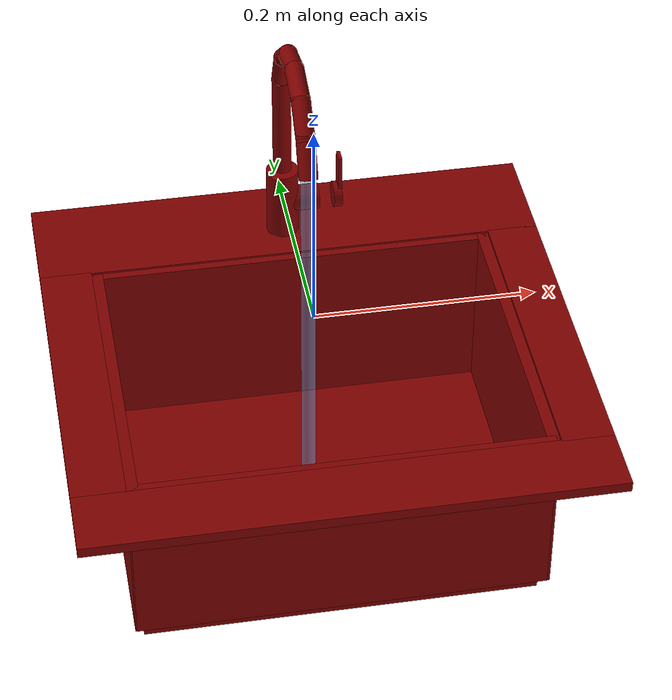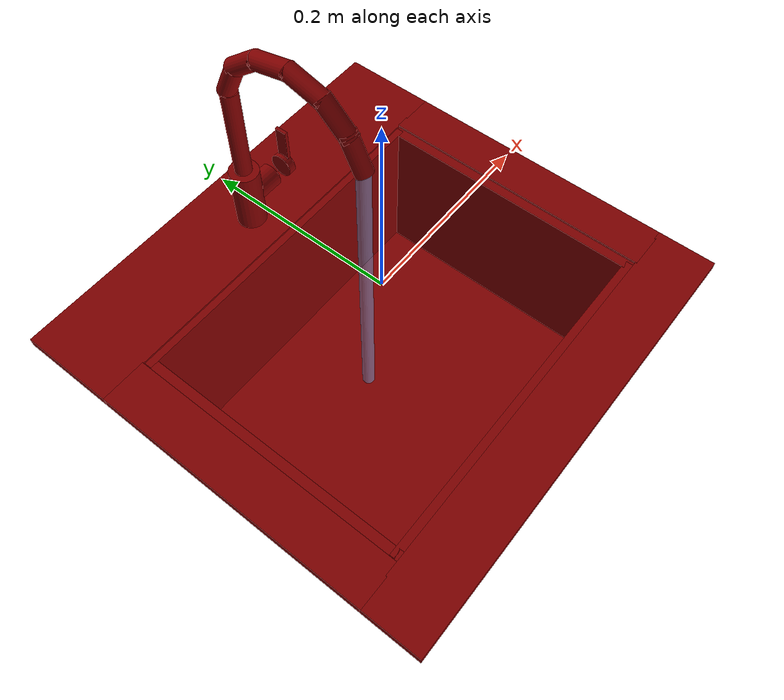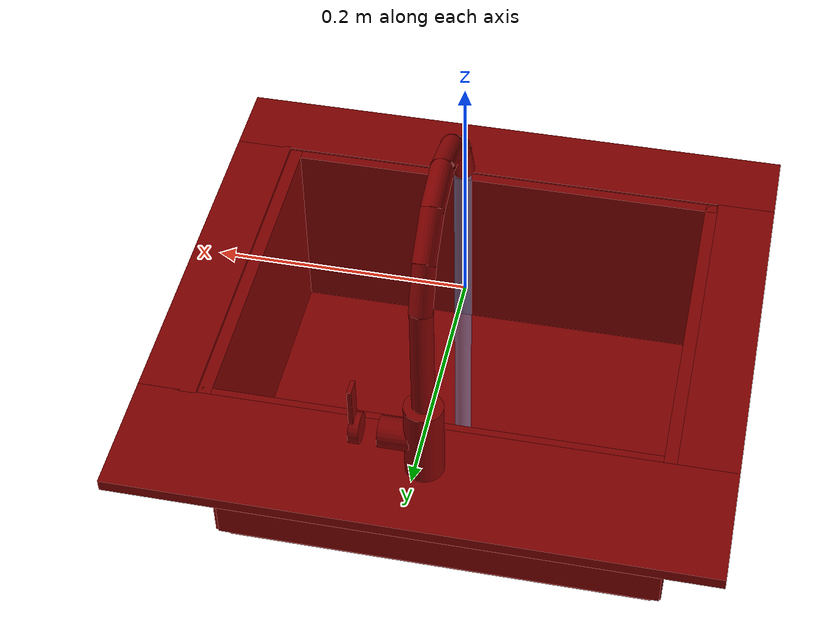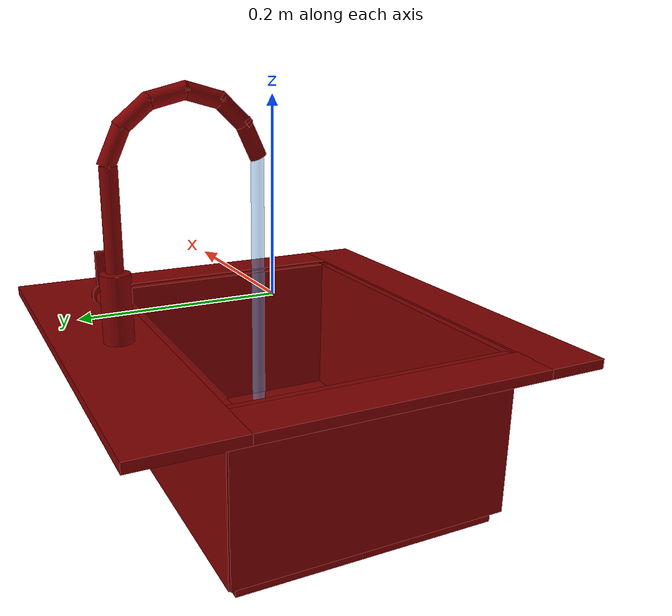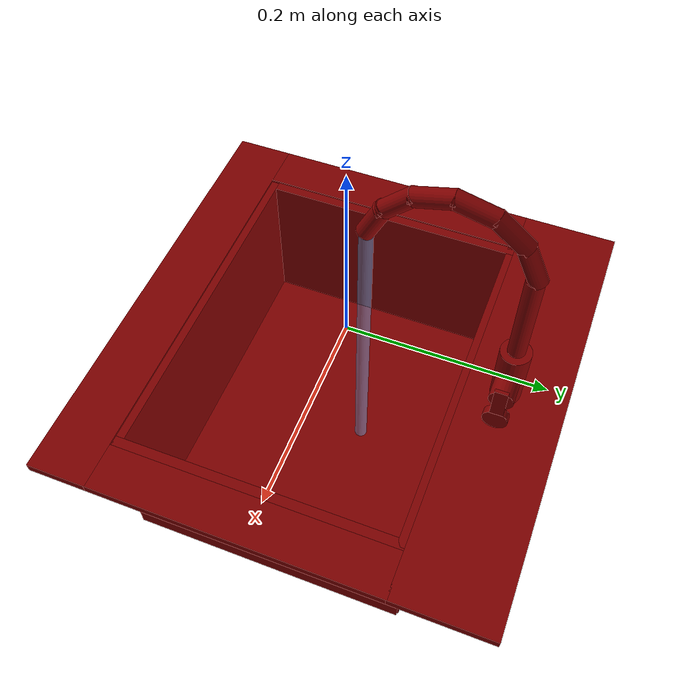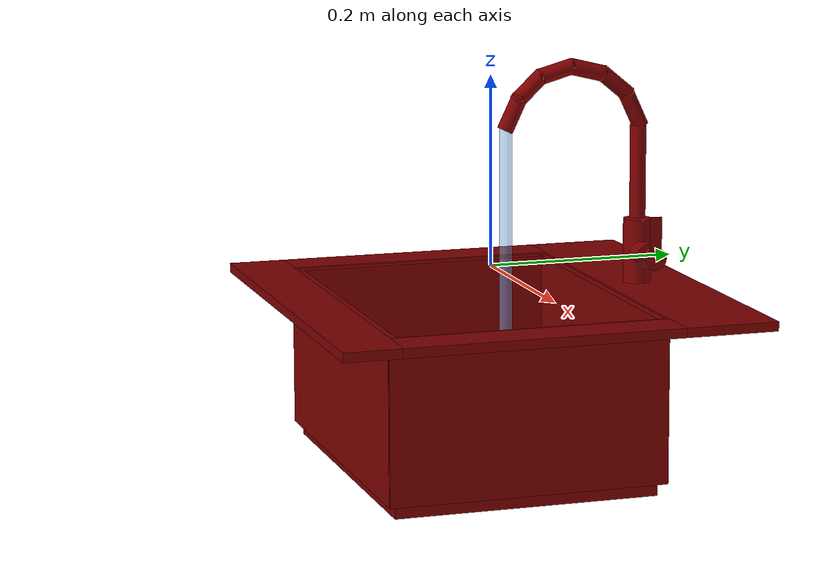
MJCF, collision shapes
<?xml version='1.0' encoding='UTF-8'?>
<mujoco model="model">
  <option timestep="0.002" gravity="0.0 0.0 -9.81"/>
  <compiler angle="radian"/>
  <asset>
    <mesh file="visuals/handle.obj" name="handle_vis"/>
    <mesh file="visuals/Body001.obj" name="Body001_vis"/>
    <mesh file="visuals/spout.obj" name="spout_vis"/>
    <texture file="visuals/T_BC001.png" name="Body001_material" type="2d"/>
    <material name="Body001_material" rgba="1 1 1 1.0" texture="Body001_material" shininess="0.1" specular="2"/>
    <texture file="visuals/T_BC001.png" name="handle_material" type="2d"/>
    <material name="handle_material" rgba="1 1 1 1.0" texture="handle_material" shininess="0.1" specular="2"/>
    <texture file="visuals/T_BC001.png" name="spout_material" type="2d"/>
    <material name="spout_material" rgba="1 1 1 1.0" texture="spout_material" shininess="0.1" specular="2"/>
  </asset>
  <default>
    <default class="visual">
      <geom conaffinity="0" contype="0" group="1" type="mesh"/>
    </default>
    <default class="collision">
      <geom group="0" rgba="0.5 0 0 0.5" solimp="0.998 0.998 0.001" solref="0.001 2"/>
    </default>
    <default class="spawn">
      <geom group="0" rgba="1 1 1 0.5" contype="0" conaffinity="0"/>
      <site group="0" rgba="1 1 1 0.5"/>
    </default>
    <default class="region">
      <geom group="1" conaffinity="0" contype="0" rgba="0 1 0 0"/>
    </default>
  </default>
  <worldbody>
    <body>
      <body name="object">
        <geom mesh="Body001_vis" type="mesh" solimp="0.998 0.998 0.001" solref="0.001 1" friction="0.95 0.3 0.1" class="visual" material="Body001_material"/>
        <geom class="collision" type="box" pos="-0.00000001 -0.19383812 -0.03178607" size="0.23323486745357513 0.030245788395404816 0.004950594622641802" quat="1.0 0.0 0.0 0.0"/>
        <geom class="collision" type="box" pos="-0.18100052 -0.01943046 -0.11311326" size="0.005237760953605175 0.14569877088069916 0.08438261598348618" quat="1.0 0.0 0.0 0.0"/>
        <geom class="collision" type="box" pos="0.21001773 -0.01943046 -0.03178607" size="0.023217124864459038 0.14569877088069916 0.004950594622641802" quat="1.0 0.0 0.0 0.0"/>
        <geom class="collision" type="box" pos="-0.20959969 -0.01943046 -0.03178607" size="0.023635167628526688 0.14569877088069916 0.004950594622641802" quat="1.0 0.0 0.0 0.0"/>
        <geom class="collision" type="box" pos="0.18119925 -0.01943046 -0.11311326" size="0.005237760953605175 0.14569877088069916 0.08438261598348618" quat="1.0 0.0 0.0 0.0"/>
        <geom class="collision" type="box" pos="-0.00053362 0.12254971 -0.11311326" size="0.18440647423267365 0.00523777212947607 0.08438261598348618" quat="1.0 0.0 0.0 0.0"/>
        <geom class="collision" type="box" pos="-0.00053362 -0.16040030 -0.11311326" size="0.18440647423267365 0.00523777212947607 0.08438261598348618" quat="1.0 0.0 0.0 0.0"/>
        <geom class="collision" type="box" pos="-0.00000001 0.17453471 -0.03178607" size="0.23323486745357513 0.04954919591546059 0.004950594622641802" quat="1.0 0.0 0.0 0.0"/>
        <geom class="collision" type="box" pos="-0.00048658 -0.01943346 -0.20309985" size="0.17773453891277313 0.13813363015651703 0.00810971762984991" quat="1.0 0.0 0.0 0.0"/>
        <geom class="collision" type="cylinder" pos="0.01562484 0.16337542 0.00644045" size="0.012047462165355682 0.016011804342269897" quat="0.7071068286895752 -0.0 0.7071067690849304 0.0"/>
        <geom class="collision" type="cylinder" pos="-0.00177376 0.16351521 0.00546708" size="0.014957708306610584 0.03546305000782013" quat="1.0 0.0 0.0 0.0"/>
        <body name="handle">
          <joint axis="1.0 0.0 0.0" pos="0.04497487 0.16340527 0.00645216" limited="true" name="handle_temp_joint" type="hinge" range="-0.7853981633974483 0.7853981633974483" damping="0.5" frictionloss="1" armature="2"/>
          <joint axis="0.0 1.0 0.0" pos="0.04497487 0.16340527 0.00645216" limited="true" name="handle_joint" type="hinge" range="0 0.5" damping="0.5" frictionloss="1" armature="2"/>
          <geom mesh="handle_vis" type="mesh" solimp="0.998 0.998 0.001" solref="0.001 1" friction="0.95 0.3 0.1" class="visual" material="handle_material"/>
          <geom class="collision" type="cylinder" pos="0.04928527 0.16337542 0.00644045" size="0.012047463096678257 0.003965734038501978" quat="0.7071068286895752 -0.0 0.7071067690849304 0.0"/>
          <geom name="handle_main" class="collision" type="box" pos="0.05156442 0.16338520 0.03356897" size="0.0017400255892425776 0.006331619340926409 0.017118733376264572" quat="1.0 0.0 0.0 0.0"/>
        </body>
        <body name="spout">
          <joint axis="0.0 0.0 1.0" pos="-0.00186770 0.16351271 0.12542864" limited="true" name="spout_joint" range="-1.0471975511965976 1.0471975511965976" type="hinge" damping="10"/>
          <site type="cylinder" rgba="0.5 0.75 1 0.5" size="0.006656858138740063 0.17077569663524628" pos="-0.00182083 0.01690412 -0.02690166" name="water"/>
          <geom mesh="spout_vis" type="mesh" solimp="0.998 0.998 0.001" solref="0.001 1" friction="0.95 0.3 0.1" class="visual" material="spout_material"/>
          <geom class="collision" type="cylinder" pos="-0.00177376 0.16351521 0.09164021" size="0.008534016087651253 0.04920020326972008" quat="1.0 0.0 0.0 0.0" name="spout_main"/>
          <geom class="collision" type="cylinder" pos="-0.00177376 0.10570459 0.20063592" size="0.008534016087651253 0.019626770168542862" quat="0.7871049046516418 0.6168191432952881 3.401772989934936e-17 -1.815173904300857e-17"/>
          <geom class="collision" type="cylinder" pos="-0.00177376 0.15769076 0.15727904" size="0.008534016087651253 0.019626770168542862" quat="0.9762960076332092 0.2164396047592163 0.0 0.0"/>
          <geom class="collision" type="cylinder" pos="-0.00177376 0.13705054 0.18532436" size="0.008534016087651253 0.019626766443252563" quat="0.9039337038993835 0.4276726543903351 3.718751909387706e-17 -1.018727187407237e-17"/>
          <geom class="collision" type="cylinder" pos="-0.00177376 0.07184861 0.20020154" size="0.008534016087651253 0.019626768305897713" quat="0.6048628091812134 0.7963297367095947 2.8299562673668287e-17 -2.6188285076161415e-17"/>
          <geom class="collision" type="cylinder" pos="-0.00177376 0.04255189 0.18392793" size="0.008534016087651253 0.019626768305897713" quat="0.3931657671928406 0.9194676280021667 2.1085503830272843e-17 -3.228147117615565e-17"/>
          <geom class="collision" type="cylinder" pos="-0.00177376 0.02422421 0.15860052" size="0.008534016087651253 0.019626768305897713" quat="0.21976730227470398 0.9755523204803467 1.4876749018176372e-17 -3.5572098223287554e-17"/>
        </body>
        <geom class="region" name="reg_basin" type="box" pos="0.00011646999999999352 -0.020444335000000008 -0.109484405" size="0.17138299 0.125295815 0.080671925"/>
        <geom class="region" name="reg_main" type="box" pos="4.999999997368221e-09 9.999999994736442e-09 -0.119022525" size="0.234234855 0.2250839 0.09318704500000001"/>
      </body>
    </body>
  </worldbody>
  <actuator>
    <motor name="handle_joint_actuator" joint="handle_joint" gear="10"/>
    <motor name="handle_temp_joint_actuator" joint="handle_temp_joint" gear="10"/>
    <motor name="spout_joint_actuator" joint="spout_joint" gear="10"/>
  </actuator>
</mujoco>
